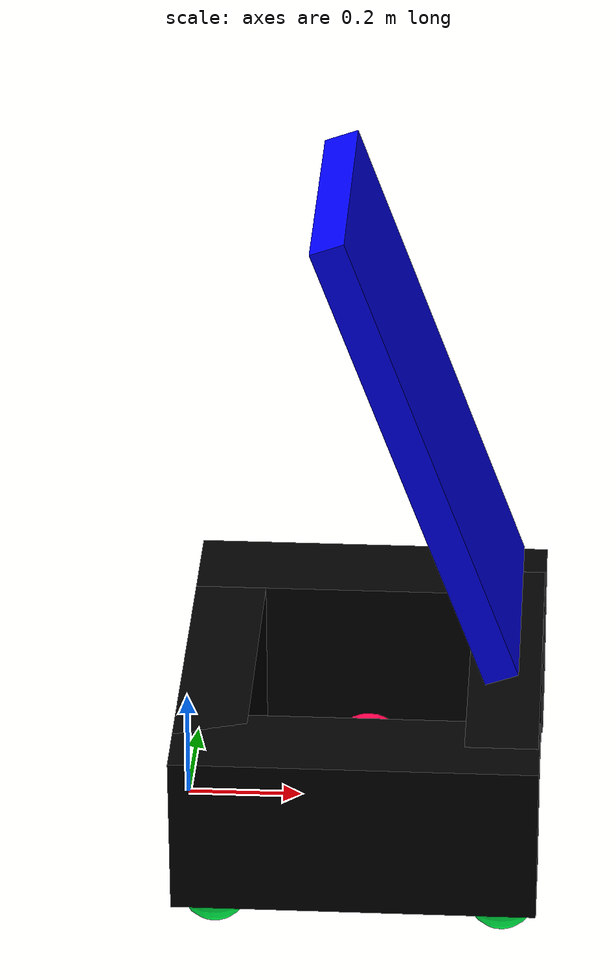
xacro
<?xml version="1.0"?>
<robot xmlns:xacro="http://www.ros.org/wiki/xacro" >

    <xacro:include filename="inertial_macros.xacro" />

    <material name="white">
        <color rgba="1.0 1.0 1.0 1.0"/>
    </material>

    <material name="black">
        <color rgba="0.0 0.0 0.0 1.0"/>
    </material>

    <material name="green">
        <color rgba="0.0 1.0 0.3 1.0"/>
    </material>

    <material name="blue">
        <color rgba="0.0 0.0 1.0 1.0"/>
    </material>

    <material name="red">
        <color rgba="1.0 0.0 0.3 1.0"/>
    </material>

    <!-- Base link -->

    <link name="base_link"/>

    <!-- Chassis left -->

    <joint name="chassis_joint_left" type="fixed">
        <parent link="base_link"/>
        <child link="chassis_link_left"/>
        <origin xyz="0 0.2925 0.0" rpy="0.0 0.0 0.0"/>
    </joint>

    <link name="chassis_link_left">
        <visual>
            <origin xyz="0.3125 0.0 0.154" />
            <geometry>
                <box size="0.625 0.1623 0.29"/>
            </geometry>
            <material name="black"/>
        </visual>
        <collision>
            <origin xyz="0.3125 0.0 0.154" />
            <geometry>
                <box size="0.625 0.1623 0.29"/>
            </geometry>
        </collision>
        <xacro:inertial_box mass="0.5" x="0.625" y="0.1623" z="0.29">
            <origin xyz="0.3125 0.0 0.154" rpy="0.0 0.0 0.0"/>
        </xacro:inertial_box>
    </link>
    <gazebo reference="chassis_link_left">
        <material>Gazebo/Black</material>
    </gazebo>

    <!-- Chassis right -->

    <joint name="chassis_joint_right" type="fixed">
        <parent link="base_link"/>
        <child link="chassis_link_right"/>
        <origin xyz="0 -0.2925 0.0" rpy="0.0 0.0 0.0"/>
    </joint>

    <link name="chassis_link_right">
        <visual>
            <origin xyz="0.3125 0.0 0.154" />
            <geometry>
                <box size="0.625 0.1623 0.29"/>
            </geometry>
            <material name="black"/>
        </visual>
        <collision>
            <origin xyz="0.3125 0.0 0.154" />
            <geometry>
                <box size="0.625 0.1623 0.29"/>
            </geometry>
        </collision>
        <xacro:inertial_box mass="0.5" x="0.625" y="0.1623" z="0.29">
            <origin xyz="0.3125 0.0 0.154" rpy="0.0 0.0 0.0"/>
        </xacro:inertial_box>
    </link>
    <gazebo reference="chassis_link_right">
        <material>Gazebo/Black</material>
    </gazebo>

    <!-- Chassis front -->

    <joint name="chassis_joint_front" type="fixed">
        <parent link="base_link"/>
        <child link="chassis_link_front"/>
        <origin xyz="0.56 0.0 0.0" rpy="0.0 0.0 0.0"/>
    </joint>

    <link name="chassis_link_front">
        <visual>
            <origin xyz="0 0.0 0.154" />
            <geometry>
                <box size="0.125 0.585 0.29"/>
            </geometry>
            <material name="black"/>
        </visual>
        <collision>
            <origin xyz="0 0.0 0.154" />
            <geometry>
                <box size="0.125 0.585 0.29"/>
            </geometry>
        </collision>
        <xacro:inertial_box mass="0.5" x="0.625" y="0.1623" z="0.29">
            <origin xyz="0 0.0 0.154" rpy="0.0 0.0 0.0"/>
        </xacro:inertial_box>
    </link>
    <gazebo reference="chassis_link_front">
        <material>Gazebo/Black</material>
    </gazebo>

    <!-- Chassis back -->

    <joint name="chassis_joint_back" type="fixed">
        <parent link="base_link"/>
        <child link="chassis_link_back"/>
        <origin xyz="0.0625 0.0 0.0" rpy="0.0 0.0 0.0"/>
    </joint>

    <link name="chassis_link_back">
        <visual>
            <origin xyz="0 0.0 0.154" />
            <geometry>
                <box size="0.125 0.585 0.29"/>
            </geometry>
            <material name="black"/>
        </visual>
        <collision>
            <origin xyz="0 0.0 0.154" />
            <geometry>
                <box size="0.125 0.585 0.29"/>
            </geometry>
        </collision>
        <xacro:inertial_box mass="0.5" x="0.625" y="0.1623" z="0.29">
            <origin xyz="0 0.0 0.154" rpy="0.0 0.0 0.0"/>
        </xacro:inertial_box>
    </link>
    <gazebo reference="chassis_link_back">
        <material>Gazebo/Black</material>
    </gazebo>

    <!-- Left Wheel -->

    <joint name="left_wheel_joint" type="continuous">
        <parent link="base_link"/>
        <child link="left_wheel_link"/>
        <axis xyz="0 0 1"/>
        <origin xyz="0.3125 0.1625 0" rpy="-1.5708 0 0"/>
        <hardwareInterface>  <velocity>  <param name="min">-10.0</param>  <param name="max">10.0</param>  </velocity> </hardwareInterface>
    </joint>

    <link name="left_wheel_link">
        <visual>
            <origin xyz="0.0 0.0 0.0" rpy="0.0 0.0 0.0"/>
            <geometry>
                <cylinder radius="0.06" length="0.035"/>
            </geometry>
            <material name="red"/>
        </visual>
        <collision>
            <geometry>
                <cylinder radius="0.06" length="0.0005"/>
            </geometry>
        </collision>
        <xacro:inertial_cylinder mass="0.1" radius="0.06" length="0.035">
            <origin xyz="0.0 0.0 0.0" rpy="0.0 0.0 0.0"/>
        </xacro:inertial_cylinder>
    </link>
    <gazebo reference="left_wheel_link">
        <material>Gazebo/Red</material>
    </gazebo>

    <!-- Right wheel -->

    <joint name="right_wheel_joint" type="continuous">
        <parent link="base_link"/>
        <child link="right_wheel_link"/>
        <axis xyz="0 0 -1"/>
        <origin xyz="0.3125 -0.1625 0" rpy="1.5708 0 0"/>
        <hardwareInterface>  <velocity>  <param name="min">-10.0</param>  <param name="max">10.0</param>  </velocity> </hardwareInterface>
    </joint>

    <link name="right_wheel_link">
        <visual>
            <origin xyz="0.0 0.0 0.0" rpy="0.0 0.0 0.0"/>
            <geometry>
                <cylinder radius="0.06" length="0.035"/>
            </geometry>
            <material name="red"/>
        </visual>
        <collision>
            <geometry>
                <cylinder radius="0.06" length="0.0005"/>
            </geometry>
        </collision>
        <xacro:inertial_cylinder mass="0.1" radius="0.06" length="0.035">
            <origin xyz="0.0 0.0 0.0" rpy="0.0 0.0 0.0"/>
        </xacro:inertial_cylinder>
    </link>
    <gazebo reference="right_wheel_link">
        <material>Gazebo/Red</material>
    </gazebo>

    <!-- Caster wheel left front -->

    <joint name="caster_wheel_joint_lf" type="fixed">
        <parent link="chassis_link_left"/>
        <child link="caster_wheel_link_lf"/>
        <origin xyz="0.565 0 0" rpy="0 0 0"/>
    </joint>

    <link name="caster_wheel_link_lf">
        <visual name="">
            <origin xyz="0.0 0.0 0.0" rpy="0.0 0.0 0.0"/>
            <geometry>
                <sphere radius="0.06"/>
            </geometry>
            <material name="green"/>
        </visual>
        <collision>
            <origin xyz="0.0 0.0 0.0" rpy="0.0 0.0 0.0"/>
            <geometry>
                <sphere radius="0.06"/>
            </geometry>
        </collision>
        <xacro:inertial_sphere mass="0.1" radius="0.06">
            <origin xyz="0.0 0.0 0.0" rpy="0.0 0.0 0.0"/>
        </xacro:inertial_sphere>
    </link>
    <gazebo reference="caster_wheel_link_lf">
        <material>Gazebo/Green</material>
        <mu1 value="0.001"/>
        <mu2 value="0.001"/>
    </gazebo>

    <!-- Caster wheel right front -->

    <joint name="caster_wheel_joint_rf" type="fixed">
        <parent link="chassis_link_right"/>
        <child link="caster_wheel_link_rf"/>
        <origin xyz="0.565 0 0" rpy="0 0 0"/>
    </joint>

    <link name="caster_wheel_link_rf">
        <visual name="">
            <origin xyz="0.0 0.0 0.0" rpy="0.0 0.0 0.0"/>
            <geometry>
                <sphere radius="0.06"/>
            </geometry>
            <material name="green"/>
        </visual>
        <collision>
            <origin xyz="0.0 0.0 0.0" rpy="0.0 0.0 0.0"/>
            <geometry>
                <sphere radius="0.06"/>
            </geometry>
        </collision>
        <xacro:inertial_sphere mass="0.1" radius="0.06">
            <origin xyz="0.0 0.0 0.0" rpy="0.0 0.0 0.0"/>
        </xacro:inertial_sphere>
    </link>
    <gazebo reference="caster_wheel_link_rf">
        <material>Gazebo/Green</material>
        <mu1 value="0.001"/>
        <mu2 value="0.001"/>
    </gazebo>

    <!-- Caster wheel left back -->

    <joint name="caster_wheel_joint_lb" type="fixed">
        <parent link="chassis_link_left"/>
        <child link="caster_wheel_link_lb"/>
        <origin xyz="0.07 0 0" rpy="0 0 0"/>
    </joint>

    <link name="caster_wheel_link_lb">
        <visual name="">
            <origin xyz="0.0 0.0 0.0" rpy="0.0 0.0 0.0"/>
            <geometry>
                <sphere radius="0.06"/>
            </geometry>
            <material name="green"/>
        </visual>
        <collision>
            <origin xyz="0.0 0.0 0.0" rpy="0.0 0.0 0.0"/>
            <geometry>
                <sphere radius="0.06"/>
            </geometry>
        </collision>
        <xacro:inertial_sphere mass="0.1" radius="0.06">
            <origin xyz="0.0 0.0 0.0" rpy="0.0 0.0 0.0"/>
        </xacro:inertial_sphere>
    </link>
    <gazebo reference="caster_wheel_link_lb">
        <material>Gazebo/Green</material>
        <mu1 value="0.001"/>
        <mu2 value="0.001"/>
    </gazebo>

    <!-- Caster wheel right back -->

    <joint name="caster_wheel_joint_rb" type="fixed">
        <parent link="chassis_link_right"/>
        <child link="caster_wheel_link_rb"/>
        <origin xyz="0.07 0 0" rpy="0 0 0"/>
    </joint>

    <link name="caster_wheel_link_rb">
        <visual name="">
            <origin xyz="0.0 0.0 0.0" rpy="0.0 0.0 0.0"/>
            <geometry>
                <sphere radius="0.06"/>
            </geometry>
            <material name="green"/>
        </visual>
        <collision>
            <origin xyz="0.0 0.0 0.0" rpy="0.0 0.0 0.0"/>
            <geometry>
                <sphere radius="0.06"/>
            </geometry>
        </collision>
        <xacro:inertial_sphere mass="0.1" radius="0.06">
            <origin xyz="0.0 0.0 0.0" rpy="0.0 0.0 0.0"/>
        </xacro:inertial_sphere>
    </link>
    <gazebo reference="caster_wheel_link_rb">
        <material>Gazebo/Green</material>
        <mu1 value="0.001"/>
        <mu2 value="0.001"/>
    </gazebo>

    <!-- LCD -->

    <joint name="lcd_joint" type="fixed">
        <origin xyz="0.0 0.0 0.36" rpy="0.0 0.0 0.0"/>
        <parent link="chassis_link_front"/>
        <child link="lcd_link"/>
    </joint>

    <link name="lcd_link">
        <visual name="">
            <origin xyz="-0.15 0.0 0.43" rpy="0.0 -0.35 0.0"/>
            <geometry>
                <box size="0.06 0.43 0.86"/>
            </geometry>
            <material name="blue" />
        </visual>
        <collision>
            <origin xyz="-0.15 0.0 0.43" rpy="0.0 -0.35 0.0"/>
            <geometry>
                <box size="0.06 0.43 0.86"/>
            </geometry>
        </collision>
        <xacro:inertial_box mass="0.5" x="0.06" y="0.43" z="0.86">
            <origin xyz="-0.15 0.0 0.43" rpy="0.0 -0.35 0.0"/>
        </xacro:inertial_box>
    </link>
    <gazebo reference="lcd_link">
        <material>Gazebo/Blue</material>
    </gazebo>
</robot>
